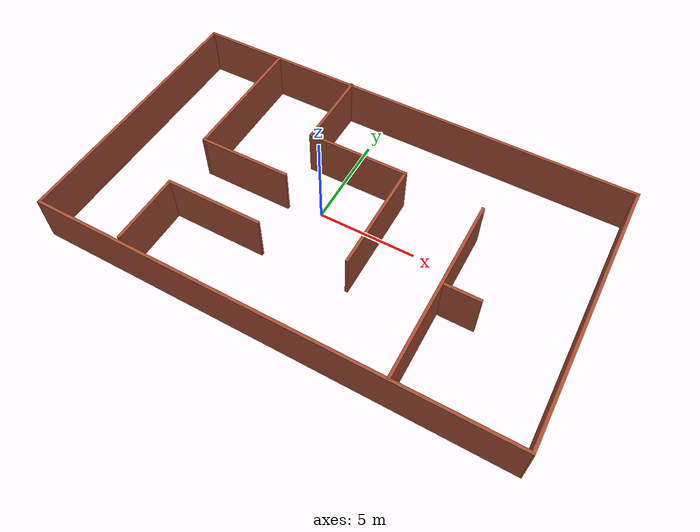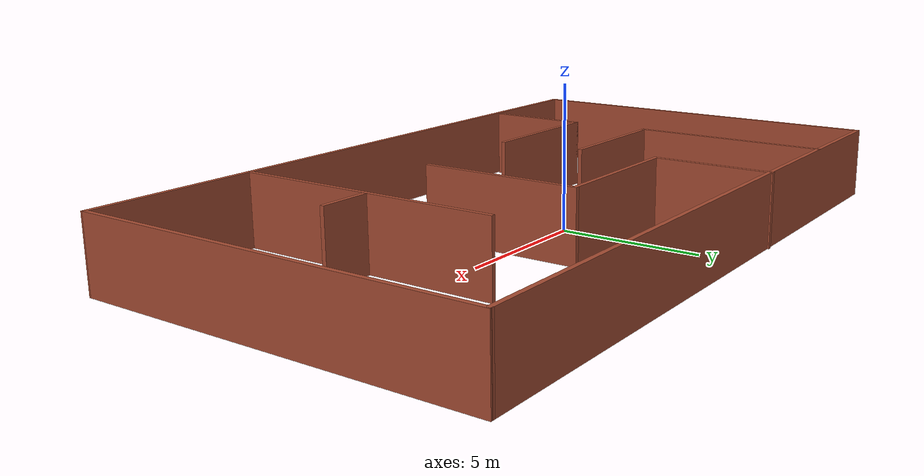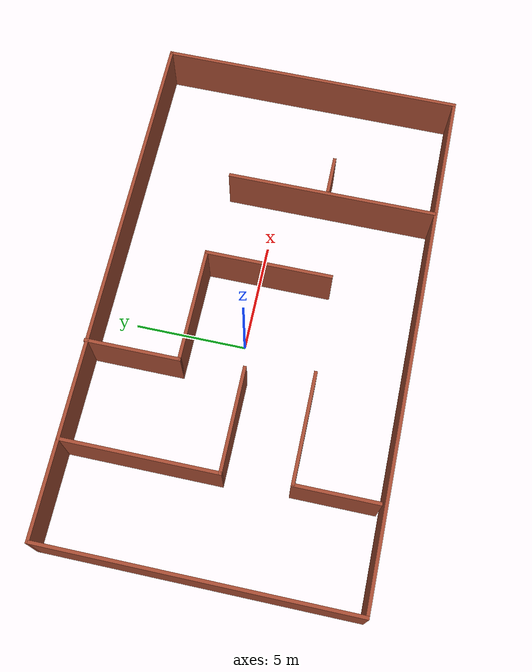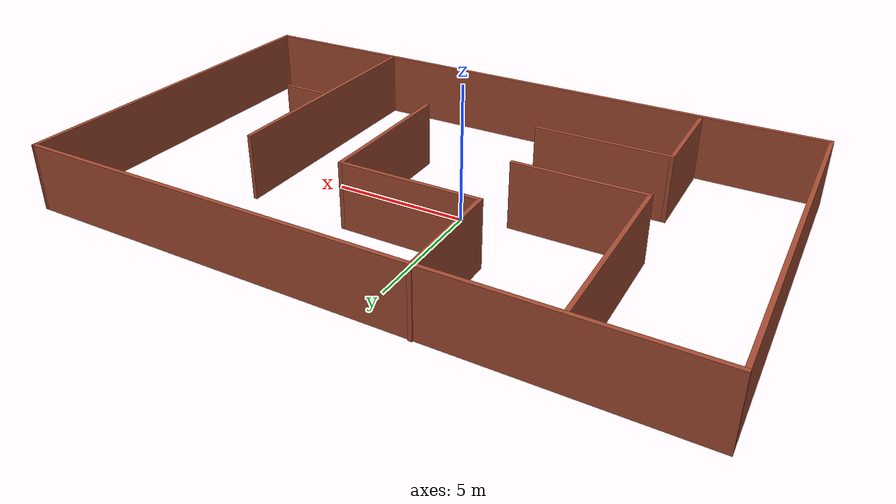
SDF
<?xml version='1.0'?>
<sdf version='1.7'>
  <model name='New_world'>
    <pose>1.2576 -0.355209 0 0 -0 0</pose>
    <link name='Wall_0'>
      <collision name='Wall_0_Collision'>
        <geometry>
          <box>
            <size>13.75 0.15 2.5</size>
          </box>
        </geometry>
        <pose>0 0 1.25 0 -0 0</pose>
      </collision>
      <visual name='Wall_0_Visual'>
        <pose>0 0 1.25 0 -0 0</pose>
        <geometry>
          <box>
            <size>13.75 0.15 2.5</size>
          </box>
        </geometry>
        <material>
          <script>
            <uri>file://media/materials/scripts/gazebo.material</uri>
            <name>Gazebo/Bricks</name>
          </script>
          <ambient>1 1 1 1</ambient>
        </material>
        <meta>
          <layer>0</layer>
        </meta>
      </visual>
      <pose>-11.8234 -0.06502 0 0 -0 -1.5708</pose>
    </link>
    <link name='Wall_1'>
      <collision name='Wall_1_Collision'>
        <geometry>
          <box>
            <size>23.75 0.15 2.5</size>
          </box>
        </geometry>
        <pose>0 0 1.25 0 -0 0</pose>
      </collision>
      <visual name='Wall_1_Visual'>
        <pose>0 0 1.25 0 -0 0</pose>
        <geometry>
          <box>
            <size>23.75 0.15 2.5</size>
          </box>
        </geometry>
        <material>
          <script>
            <uri>file://media/materials/scripts/gazebo.material</uri>
            <name>Gazebo/Bricks</name>
          </script>
          <ambient>1 1 1 1</ambient>
        </material>
        <meta>
          <layer>0</layer>
        </meta>
      </visual>
      <pose>-0.023388 -6.86502 0 0 -0 0</pose>
    </link>
    <link name='Wall_11'>
      <collision name='Wall_11_Collision'>
        <geometry>
          <box>
            <size>7 0.15 2.5</size>
          </box>
        </geometry>
        <pose>0 0 1.25 0 -0 0</pose>
      </collision>
      <visual name='Wall_11_Visual'>
        <pose>0 0 1.25 0 -0 0</pose>
        <geometry>
          <box>
            <size>7 0.15 2.5</size>
          </box>
        </geometry>
        <material>
          <script>
            <uri>file://media/materials/scripts/gazebo.material</uri>
            <name>Gazebo/Bricks</name>
          </script>
          <ambient>1 1 1 1</ambient>
        </material>
        <meta>
          <layer>0</layer>
        </meta>
      </visual>
      <pose>-7.54385 3.38673 0 0 -0 -1.5708</pose>
    </link>
    <link name='Wall_12'>
      <collision name='Wall_12_Collision'>
        <geometry>
          <box>
            <size>4.75 0.15 2.5</size>
          </box>
        </geometry>
        <pose>0 0 1.25 0 -0 0</pose>
      </collision>
      <visual name='Wall_12_Visual'>
        <pose>0 0 1.25 0 -0 0</pose>
        <geometry>
          <box>
            <size>4.75 0.15 2.5</size>
          </box>
        </geometry>
        <material>
          <script>
            <uri>file://media/materials/scripts/gazebo.material</uri>
            <name>Gazebo/Bricks</name>
          </script>
          <ambient>1 1 1 1</ambient>
        </material>
        <meta>
          <layer>0</layer>
        </meta>
      </visual>
      <pose>-5.24385 -0.038268 0 0 -0 0</pose>
    </link>
    <link name='Wall_14'>
      <collision name='Wall_14_Collision'>
        <geometry>
          <box>
            <size>3.75 0.15 2.5</size>
          </box>
        </geometry>
        <pose>0 0 1.25 0 -0 0</pose>
      </collision>
      <visual name='Wall_14_Visual'>
        <pose>0 0 1.25 0 -0 0</pose>
        <geometry>
          <box>
            <size>3.75 0.15 2.5</size>
          </box>
        </geometry>
        <material>
          <script>
            <uri>file://media/materials/scripts/gazebo.material</uri>
            <name>Gazebo/Bricks</name>
          </script>
          <ambient>1 1 1 1</ambient>
        </material>
        <meta>
          <layer>0</layer>
        </meta>
      </visual>
      <pose>-7.38335 -4.8174 0 0 -0 1.5708</pose>
    </link>
    <link name='Wall_15'>
      <collision name='Wall_15_Collision'>
        <geometry>
          <box>
            <size>5 0.15 2.5</size>
          </box>
        </geometry>
        <pose>0 0 1.25 0 -0 0</pose>
      </collision>
      <visual name='Wall_15_Visual'>
        <pose>0 0 1.25 0 -0 0</pose>
        <geometry>
          <box>
            <size>5 0.15 2.5</size>
          </box>
        </geometry>
        <material>
          <script>
            <uri>file://media/materials/scripts/gazebo.material</uri>
            <name>Gazebo/Bricks</name>
          </script>
          <ambient>1 1 1 1</ambient>
        </material>
        <meta>
          <layer>0</layer>
        </meta>
      </visual>
      <pose>-4.95835 -3.0174 0 0 -0 0</pose>
    </link>
    <link name='Wall_17'>
      <collision name='Wall_17_Collision'>
        <geometry>
          <box>
            <size>4.25 0.15 2.5</size>
          </box>
        </geometry>
        <pose>0 0 1.25 0 -0 0</pose>
      </collision>
      <visual name='Wall_17_Visual'>
        <pose>0 0 1.25 0 -0 0</pose>
        <geometry>
          <box>
            <size>4.25 0.15 2.5</size>
          </box>
        </geometry>
        <material>
          <script>
            <uri>file://media/materials/scripts/gazebo.material</uri>
            <name>Gazebo/Bricks</name>
          </script>
          <ambient>1 1 1 1</ambient>
        </material>
        <meta>
          <layer>0</layer>
        </meta>
      </visual>
      <pose>-3.15665 4.81523 0 0 -0 -1.5708</pose>
    </link>
    <link name='Wall_18'>
      <collision name='Wall_18_Collision'>
        <geometry>
          <box>
            <size>5.25 0.15 2.5</size>
          </box>
        </geometry>
        <pose>0 0 1.25 0 -0 0</pose>
      </collision>
      <visual name='Wall_18_Visual'>
        <pose>0 0 1.25 0 -0 0</pose>
        <geometry>
          <box>
            <size>5.25 0.15 2.5</size>
          </box>
        </geometry>
        <material>
          <script>
            <uri>file://media/materials/scripts/gazebo.material</uri>
            <name>Gazebo/Bricks</name>
          </script>
          <ambient>1 1 1 1</ambient>
        </material>
        <meta>
          <layer>0</layer>
        </meta>
      </visual>
      <pose>-0.606648 2.76523 0 0 -0 0</pose>
    </link>
    <link name='Wall_19'>
      <collision name='Wall_19_Collision'>
        <geometry>
          <box>
            <size>5.75 0.15 2.5</size>
          </box>
        </geometry>
        <pose>0 0 1.25 0 -0 0</pose>
      </collision>
      <visual name='Wall_19_Visual'>
        <pose>0 0 1.25 0 -0 0</pose>
        <geometry>
          <box>
            <size>5.75 0.15 2.5</size>
          </box>
        </geometry>
        <material>
          <script>
            <uri>file://media/materials/scripts/gazebo.material</uri>
            <name>Gazebo/Bricks</name>
          </script>
          <ambient>1 1 1 1</ambient>
        </material>
        <meta>
          <layer>0</layer>
        </meta>
      </visual>
      <pose>1.94335 -0.034765 0 0 -0 -1.5708</pose>
    </link>
    <link name='Wall_2'>
      <collision name='Wall_2_Collision'>
        <geometry>
          <box>
            <size>13.8309 0.15 2.5</size>
          </box>
        </geometry>
        <pose>0 0 1.25 0 -0 0</pose>
      </collision>
      <visual name='Wall_2_Visual'>
        <pose>0 0 1.25 0 -0 0</pose>
        <geometry>
          <box>
            <size>13.8309 0.15 2.5</size>
          </box>
        </geometry>
        <material>
          <script>
            <uri>file://media/materials/scripts/gazebo.material</uri>
            <name>Gazebo/Bricks</name>
          </script>
          <ambient>1 1 1 1</ambient>
        </material>
        <meta>
          <layer>0</layer>
        </meta>
      </visual>
      <pose>11.7999 -0.024593 0 0 -0 1.5674</pose>
    </link>
    <link name='Wall_21'>
      <collision name='Wall_21_Collision'>
        <geometry>
          <box>
            <size>9.5 0.15 2.5</size>
          </box>
        </geometry>
        <pose>0 0 1.25 0 -0 0</pose>
      </collision>
      <visual name='Wall_21_Visual'>
        <pose>0 0 1.25 0 -0 0</pose>
        <geometry>
          <box>
            <size>9.5 0.15 2.5</size>
          </box>
        </geometry>
        <material>
          <script>
            <uri>file://media/materials/scripts/gazebo.material</uri>
            <name>Gazebo/Bricks</name>
          </script>
          <ambient>1 1 1 1</ambient>
        </material>
        <meta>
          <layer>0</layer>
        </meta>
      </visual>
      <pose>5.93878 -2.1029 0 0 -0 1.5708</pose>
    </link>
    <link name='Wall_23'>
      <collision name='Wall_23_Collision'>
        <geometry>
          <box>
            <size>1.75 0.15 2.5</size>
          </box>
        </geometry>
        <pose>0 0 1.25 0 -0 0</pose>
      </collision>
      <visual name='Wall_23_Visual'>
        <pose>0 0 1.25 0 -0 0</pose>
        <geometry>
          <box>
            <size>1.75 0.15 2.5</size>
          </box>
        </geometry>
        <material>
          <script>
            <uri>file://media/materials/scripts/gazebo.material</uri>
            <name>Gazebo/Bricks</name>
          </script>
          <ambient>1 1 1 1</ambient>
        </material>
        <meta>
          <layer>0</layer>
        </meta>
      </visual>
      <pose>6.89928 -1.90918 0 0 -0 0</pose>
    </link>
    <link name='Wall_3'>
      <collision name='Wall_3_Collision'>
        <geometry>
          <box>
            <size>23.75 0.15 2.5</size>
          </box>
        </geometry>
        <pose>0 0 1.25 0 -0 0</pose>
      </collision>
      <visual name='Wall_3_Visual'>
        <pose>0 0 1.25 0 -0 0</pose>
        <geometry>
          <box>
            <size>23.75 0.15 2.5</size>
          </box>
        </geometry>
        <material>
          <script>
            <uri>file://media/materials/scripts/gazebo.material</uri>
            <name>Gazebo/Bricks</name>
          </script>
          <ambient>1 1 1 1</ambient>
        </material>
        <meta>
          <layer>0</layer>
        </meta>
      </visual>
      <pose>-0.023388 6.81583 0 0 -0 3.14159</pose>
    </link>
    <static>1</static>
  </model>
</sdf>
